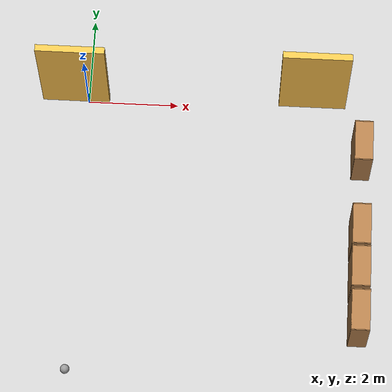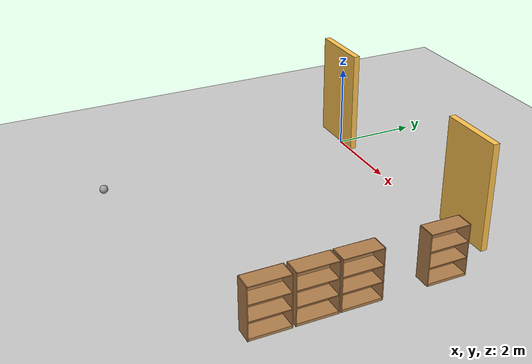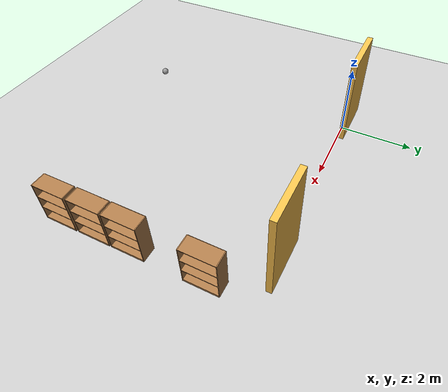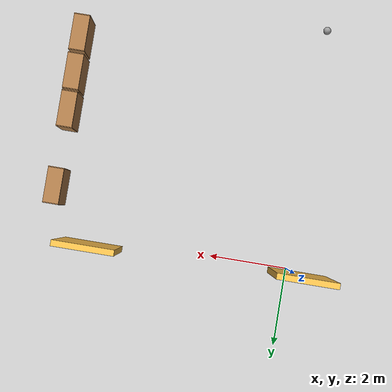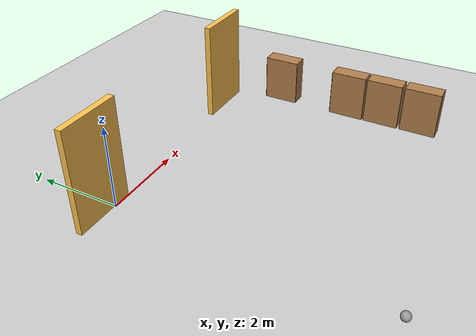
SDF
<sdf version="1.6">
 <world name="default">
  <model name="ground_plane">
   <static>1</static>
   <link name="link">
    <collision name="collision">
     <geometry><plane><normal>0 0 1</normal><size>100 100</size></plane></geometry>
     <surface>
      <contact><collide_bitmask>65535</collide_bitmask></contact>
      <friction><ode><mu>100</mu><mu2>50</mu2></ode></friction>
     </surface>
    </collision>
    <visual name="visual">
     <cast_shadows>0</cast_shadows>
     <geometry><plane><normal>0 0 1</normal><size>100 100</size></plane></geometry>
     <material>
      <script><uri>file://media/materials/scripts/gazebo.material</uri><name>Gazebo/Grey</name></script>
     </material>
    </visual>
   </link>
  </model>
  <model name="model-03">
   <pose>2.36951 0.15153 0 0 -0 0</pose>
   <link name="Wall_83">
    <collision name="Wall_83_Collision">
     <geometry><box><size>1.5 0.15 2.5</size></box></geometry>
     <pose>0 0 1.25 0 -0 0</pose>
    </collision>
    <visual name="Wall_83_Visual">
     <pose>0 0 1.25 0 -0 0</pose>
     <geometry><box><size>1.5 0.15 2.5</size></box></geometry>
     <material>
      <script><uri>file://media/materials/scripts/gazebo.material</uri><name>Gazebo/Grey</name></script>
      <ambient>1 0.764706 0.305882 1</ambient>
     </material>
     <meta><layer>0</layer></meta>
    </visual>
    <pose>-2.6608 -0.049649 0 0 -0 3.14159</pose>
   </link>
   <link name="Wall_85">
    <collision name="Wall_85_Collision">
     <geometry><box><size>1.5 0.15 2.5</size></box></geometry>
     <pose>0 0 1.25 0 -0 0</pose>
    </collision>
    <visual name="Wall_85_Visual">
     <pose>0 0 1.25 0 -0 0</pose>
     <geometry><box><size>1.5 0.15 2.5</size></box></geometry>
     <material>
      <script><uri>file://media/materials/scripts/gazebo.material</uri><name>Gazebo/Grey</name></script>
      <ambient>1 0.764706 0.305882 1</ambient>
     </material>
     <meta><layer>0</layer></meta>
    </visual>
    <pose>2.6608 0.049649 0 0 -0 0</pose>
   </link>
   <static>1</static>
  </model>
  <model name="bookshelf_clone">
   <static>1</static>
   <link name="link">
    <inertial><mass>1</mass></inertial>
    <collision name="back">
     <pose>0 0.005 0.6 0 -0 0</pose>
     <geometry><box><size>0.9 0.01 1.2</size></box></geometry>
    </collision>
    <visual name="visual1">
     <pose>0 0.005 0.6 0 -0 0</pose>
     <geometry><box><size>0.9 0.01 1.2</size></box></geometry>
     <material>
      <script><uri>file://media/materials/scripts/gazebo.material</uri><name>Gazebo/Wood</name></script>
     </material>
    </visual>
    <collision name="left_side">
     <pose>0.45 -0.195 0.6 0 -0 0</pose>
     <geometry><box><size>0.02 0.4 1.2</size></box></geometry>
    </collision>
    <visual name="visual2">
     <pose>0.45 -0.195 0.6 0 -0 0</pose>
     <geometry><box><size>0.02 0.4 1.2</size></box></geometry>
     <material>
      <script><uri>file://media/materials/scripts/gazebo.material</uri><name>Gazebo/Wood</name></script>
     </material>
    </visual>
    <collision name="right_side">
     <pose>-0.45 -0.195 0.6 0 -0 0</pose>
     <geometry><box><size>0.02 0.4 1.2</size></box></geometry>
    </collision>
    <visual name="visual3">
     <pose>-0.45 -0.195 0.6 0 -0 0</pose>
     <geometry><box><size>0.02 0.4 1.2</size></box></geometry>
     <material>
      <script><uri>file://media/materials/scripts/gazebo.material</uri><name>Gazebo/Wood</name></script>
     </material>
    </visual>
    <collision name="bottom">
     <pose>0 -0.195 0.03 0 -0 0</pose>
     <geometry><box><size>0.88 0.4 0.06</size></box></geometry>
    </collision>
    <visual name="visual4">
     <pose>0 -0.195 0.03 0 -0 0</pose>
     <geometry><box><size>0.88 0.4 0.06</size></box></geometry>
     <material>
      <script><uri>file://media/materials/scripts/gazebo.material</uri><name>Gazebo/Wood</name></script>
     </material>
    </visual>
    <collision name="top">
     <pose>0 -0.195 1.19 0 -0 0</pose>
     <geometry><box><size>0.88 0.4 0.02</size></box></geometry>
    </collision>
    <visual name="visual5">
     <pose>0 -0.195 1.19 0 -0 0</pose>
     <geometry><box><size>0.88 0.4 0.02</size></box></geometry>
     <material>
      <script><uri>file://media/materials/scripts/gazebo.material</uri><name>Gazebo/Wood</name></script>
     </material>
    </visual>
    <collision name="low_shelf">
     <pose>0 -0.195 0.43 0 -0 0</pose>
     <geometry><box><size>0.88 0.4 0.02</size></box></geometry>
    </collision>
    <visual name="visual6">
     <pose>0 -0.195 0.43 0 -0 0</pose>
     <geometry><box><size>0.88 0.4 0.02</size></box></geometry>
     <material>
      <script><uri>file://media/materials/scripts/gazebo.material</uri><name>Gazebo/Wood</name></script>
     </material>
    </visual>
    <collision name="high_shelf">
     <pose>0 -0.195 0.8 0 -0 0</pose>
     <geometry><box><size>0.88 0.4 0.02</size></box></geometry>
    </collision>
    <visual name="visual7">
     <pose>0 -0.195 0.8 0 -0 0</pose>
     <geometry><box><size>0.88 0.4 0.02</size></box></geometry>
     <material>
      <script><uri>file://media/materials/scripts/gazebo.material</uri><name>Gazebo/Wood</name></script>
     </material>
    </visual>
   </link>
   <pose>5.95095 -5.00341 0 0 -0 1.5708</pose>
  </model>
  <model name="bookshelf_clone_0">
   <static>1</static>
   <link name="link">
    <inertial><mass>1</mass></inertial>
    <collision name="back">
     <pose>0 0.005 0.6 0 -0 0</pose>
     <geometry><box><size>0.9 0.01 1.2</size></box></geometry>
    </collision>
    <visual name="visual1">
     <pose>0 0.005 0.6 0 -0 0</pose>
     <geometry><box><size>0.9 0.01 1.2</size></box></geometry>
     <material>
      <script><uri>file://media/materials/scripts/gazebo.material</uri><name>Gazebo/Wood</name></script>
     </material>
    </visual>
    <collision name="left_side">
     <pose>0.45 -0.195 0.6 0 -0 0</pose>
     <geometry><box><size>0.02 0.4 1.2</size></box></geometry>
    </collision>
    <visual name="visual2">
     <pose>0.45 -0.195 0.6 0 -0 0</pose>
     <geometry><box><size>0.02 0.4 1.2</size></box></geometry>
     <material>
      <script><uri>file://media/materials/scripts/gazebo.material</uri><name>Gazebo/Wood</name></script>
     </material>
    </visual>
    <collision name="right_side">
     <pose>-0.45 -0.195 0.6 0 -0 0</pose>
     <geometry><box><size>0.02 0.4 1.2</size></box></geometry>
    </collision>
    <visual name="visual3">
     <pose>-0.45 -0.195 0.6 0 -0 0</pose>
     <geometry><box><size>0.02 0.4 1.2</size></box></geometry>
     <material>
      <script><uri>file://media/materials/scripts/gazebo.material</uri><name>Gazebo/Wood</name></script>
     </material>
    </visual>
    <collision name="bottom">
     <pose>0 -0.195 0.03 0 -0 0</pose>
     <geometry><box><size>0.88 0.4 0.06</size></box></geometry>
    </collision>
    <visual name="visual4">
     <pose>0 -0.195 0.03 0 -0 0</pose>
     <geometry><box><size>0.88 0.4 0.06</size></box></geometry>
     <material>
      <script><uri>file://media/materials/scripts/gazebo.material</uri><name>Gazebo/Wood</name></script>
     </material>
    </visual>
    <collision name="top">
     <pose>0 -0.195 1.19 0 -0 0</pose>
     <geometry><box><size>0.88 0.4 0.02</size></box></geometry>
    </collision>
    <visual name="visual5">
     <pose>0 -0.195 1.19 0 -0 0</pose>
     <geometry><box><size>0.88 0.4 0.02</size></box></geometry>
     <material>
      <script><uri>file://media/materials/scripts/gazebo.material</uri><name>Gazebo/Wood</name></script>
     </material>
    </visual>
    <collision name="low_shelf">
     <pose>0 -0.195 0.43 0 -0 0</pose>
     <geometry><box><size>0.88 0.4 0.02</size></box></geometry>
    </collision>
    <visual name="visual6">
     <pose>0 -0.195 0.43 0 -0 0</pose>
     <geometry><box><size>0.88 0.4 0.02</size></box></geometry>
     <material>
      <script><uri>file://media/materials/scripts/gazebo.material</uri><name>Gazebo/Wood</name></script>
     </material>
    </visual>
    <collision name="high_shelf">
     <pose>0 -0.195 0.8 0 -0 0</pose>
     <geometry><box><size>0.88 0.4 0.02</size></box></geometry>
    </collision>
    <visual name="visual7">
     <pose>0 -0.195 0.8 0 -0 0</pose>
     <geometry><box><size>0.88 0.4 0.02</size></box></geometry>
     <material>
      <script><uri>file://media/materials/scripts/gazebo.material</uri><name>Gazebo/Wood</name></script>
     </material>
    </visual>
   </link>
   <pose>5.94427 -4.02578 0 0 -0 1.5708</pose>
  </model>
  <model name="bookshelf_clone_1">
   <static>1</static>
   <link name="link">
    <inertial><mass>1</mass></inertial>
    <collision name="back">
     <pose>0 0.005 0.6 0 -0 0</pose>
     <geometry><box><size>0.9 0.01 1.2</size></box></geometry>
    </collision>
    <visual name="visual1">
     <pose>0 0.005 0.6 0 -0 0</pose>
     <geometry><box><size>0.9 0.01 1.2</size></box></geometry>
     <material>
      <script><uri>file://media/materials/scripts/gazebo.material</uri><name>Gazebo/Wood</name></script>
     </material>
    </visual>
    <collision name="left_side">
     <pose>0.45 -0.195 0.6 0 -0 0</pose>
     <geometry><box><size>0.02 0.4 1.2</size></box></geometry>
    </collision>
    <visual name="visual2">
     <pose>0.45 -0.195 0.6 0 -0 0</pose>
     <geometry><box><size>0.02 0.4 1.2</size></box></geometry>
     <material>
      <script><uri>file://media/materials/scripts/gazebo.material</uri><name>Gazebo/Wood</name></script>
     </material>
    </visual>
    <collision name="right_side">
     <pose>-0.45 -0.195 0.6 0 -0 0</pose>
     <geometry><box><size>0.02 0.4 1.2</size></box></geometry>
    </collision>
    <visual name="visual3">
     <pose>-0.45 -0.195 0.6 0 -0 0</pose>
     <geometry><box><size>0.02 0.4 1.2</size></box></geometry>
     <material>
      <script><uri>file://media/materials/scripts/gazebo.material</uri><name>Gazebo/Wood</name></script>
     </material>
    </visual>
    <collision name="bottom">
     <pose>0 -0.195 0.03 0 -0 0</pose>
     <geometry><box><size>0.88 0.4 0.06</size></box></geometry>
    </collision>
    <visual name="visual4">
     <pose>0 -0.195 0.03 0 -0 0</pose>
     <geometry><box><size>0.88 0.4 0.06</size></box></geometry>
     <material>
      <script><uri>file://media/materials/scripts/gazebo.material</uri><name>Gazebo/Wood</name></script>
     </material>
    </visual>
    <collision name="top">
     <pose>0 -0.195 1.19 0 -0 0</pose>
     <geometry><box><size>0.88 0.4 0.02</size></box></geometry>
    </collision>
    <visual name="visual5">
     <pose>0 -0.195 1.19 0 -0 0</pose>
     <geometry><box><size>0.88 0.4 0.02</size></box></geometry>
     <material>
      <script><uri>file://media/materials/scripts/gazebo.material</uri><name>Gazebo/Wood</name></script>
     </material>
    </visual>
    <collision name="low_shelf">
     <pose>0 -0.195 0.43 0 -0 0</pose>
     <geometry><box><size>0.88 0.4 0.02</size></box></geometry>
    </collision>
    <visual name="visual6">
     <pose>0 -0.195 0.43 0 -0 0</pose>
     <geometry><box><size>0.88 0.4 0.02</size></box></geometry>
     <material>
      <script><uri>file://media/materials/scripts/gazebo.material</uri><name>Gazebo/Wood</name></script>
     </material>
    </visual>
    <collision name="high_shelf">
     <pose>0 -0.195 0.8 0 -0 0</pose>
     <geometry><box><size>0.88 0.4 0.02</size></box></geometry>
    </collision>
    <visual name="visual7">
     <pose>0 -0.195 0.8 0 -0 0</pose>
     <geometry><box><size>0.88 0.4 0.02</size></box></geometry>
     <material>
      <script><uri>file://media/materials/scripts/gazebo.material</uri><name>Gazebo/Wood</name></script>
     </material>
    </visual>
   </link>
   <pose>5.93869 -3.06933 0 0 -0 1.5708</pose>
  </model>
  <model name="bookshelf_clone_3">
   <static>1</static>
   <link name="link">
    <inertial><mass>1</mass></inertial>
    <collision name="back">
     <pose>0 0.005 0.6 0 -0 0</pose>
     <geometry><box><size>0.9 0.01 1.2</size></box></geometry>
    </collision>
    <visual name="visual1">
     <pose>0 0.005 0.6 0 -0 0</pose>
     <geometry><box><size>0.9 0.01 1.2</size></box></geometry>
     <material>
      <script><uri>file://media/materials/scripts/gazebo.material</uri><name>Gazebo/Wood</name></script>
     </material>
    </visual>
    <collision name="left_side">
     <pose>0.45 -0.195 0.6 0 -0 0</pose>
     <geometry><box><size>0.02 0.4 1.2</size></box></geometry>
    </collision>
    <visual name="visual2">
     <pose>0.45 -0.195 0.6 0 -0 0</pose>
     <geometry><box><size>0.02 0.4 1.2</size></box></geometry>
     <material>
      <script><uri>file://media/materials/scripts/gazebo.material</uri><name>Gazebo/Wood</name></script>
     </material>
    </visual>
    <collision name="right_side">
     <pose>-0.45 -0.195 0.6 0 -0 0</pose>
     <geometry><box><size>0.02 0.4 1.2</size></box></geometry>
    </collision>
    <visual name="visual3">
     <pose>-0.45 -0.195 0.6 0 -0 0</pose>
     <geometry><box><size>0.02 0.4 1.2</size></box></geometry>
     <material>
      <script><uri>file://media/materials/scripts/gazebo.material</uri><name>Gazebo/Wood</name></script>
     </material>
    </visual>
    <collision name="bottom">
     <pose>0 -0.195 0.03 0 -0 0</pose>
     <geometry><box><size>0.88 0.4 0.06</size></box></geometry>
    </collision>
    <visual name="visual4">
     <pose>0 -0.195 0.03 0 -0 0</pose>
     <geometry><box><size>0.88 0.4 0.06</size></box></geometry>
     <material>
      <script><uri>file://media/materials/scripts/gazebo.material</uri><name>Gazebo/Wood</name></script>
     </material>
    </visual>
    <collision name="top">
     <pose>0 -0.195 1.19 0 -0 0</pose>
     <geometry><box><size>0.88 0.4 0.02</size></box></geometry>
    </collision>
    <visual name="visual5">
     <pose>0 -0.195 1.19 0 -0 0</pose>
     <geometry><box><size>0.88 0.4 0.02</size></box></geometry>
     <material>
      <script><uri>file://media/materials/scripts/gazebo.material</uri><name>Gazebo/Wood</name></script>
     </material>
    </visual>
    <collision name="low_shelf">
     <pose>0 -0.195 0.43 0 -0 0</pose>
     <geometry><box><size>0.88 0.4 0.02</size></box></geometry>
    </collision>
    <visual name="visual6">
     <pose>0 -0.195 0.43 0 -0 0</pose>
     <geometry><box><size>0.88 0.4 0.02</size></box></geometry>
     <material>
      <script><uri>file://media/materials/scripts/gazebo.material</uri><name>Gazebo/Wood</name></script>
     </material>
    </visual>
    <collision name="high_shelf">
     <pose>0 -0.195 0.8 0 -0 0</pose>
     <geometry><box><size>0.88 0.4 0.02</size></box></geometry>
    </collision>
    <visual name="visual7">
     <pose>0 -0.195 0.8 0 -0 0</pose>
     <geometry><box><size>0.88 0.4 0.02</size></box></geometry>
     <material>
      <script><uri>file://media/materials/scripts/gazebo.material</uri><name>Gazebo/Wood</name></script>
     </material>
    </visual>
   </link>
   <pose>5.94789 -1.13735 0 0 -0 1.5708</pose>
  </model>
  <model name="my_ball">
   <link name="link_0">
    <inertial>
     <mass>1</mass>
     <inertia><ixx>0.1</ixx><ixy>0</ixy><ixz>0</ixz><iyy>0.1</iyy><iyz>0</iyz><izz>0.1</izz></inertia>
    </inertial>
    <visual name="visual">
     <geometry><sphere><radius>0.1</radius></sphere></geometry>
     <material>
      <lighting>1</lighting>
      <script><uri>file://media/materials/scripts/gazebo.material</uri><name>Gazebo/Grey</name></script>
      <shader type="pixel"><normal_map>__default__</normal_map></shader>
      <ambient>1 1 1 1</ambient>
      <diffuse>1 1 1 1</diffuse>
      <specular>1 1 1 1</specular>
      <emissive>1 1 1 1</emissive>
     </material>
    </visual>
    <collision name="collision">
     <geometry><sphere><radius>0.1</radius></sphere></geometry>
     <surface>
      <friction>
       <ode><mu>1</mu><mu2>1</mu2><fdir1>0 0 0</fdir1><slip1>0</slip1><slip2>0</slip2></ode>
       <torsional>
        <coefficient>1</coefficient>
        <patch_radius>0</patch_radius>
        <surface_radius>0</surface_radius>
        <use_patch_radius>1</use_patch_radius>
        <ode><slip>0</slip></ode>
       </torsional>
      </friction>
      <bounce><restitution_coefficient>0</restitution_coefficient><threshold>1e+06</threshold></bounce>
      <contact>
       <collide_without_contact>0</collide_without_contact>
       <collide_without_contact_bitmask>1</collide_without_contact_bitmask>
       <collide_bitmask>1</collide_bitmask>
       <ode>
        <soft_cfm>0</soft_cfm>
        <soft_erp>0.2</soft_erp>
        <kp>1e+13</kp>
        <kd>1</kd>
        <max_vel>0.01</max_vel>
        <min_depth>0</min_depth>
       </ode>
       <bullet>
        <split_impulse>1</split_impulse>
        <split_impulse_penetration_threshold>-0.01</split_impulse_penetration_threshold>
        <soft_cfm>0</soft_cfm>
        <soft_erp>0.2</soft_erp>
        <kp>1e+13</kp>
        <kd>1</kd>
       </bullet>
      </contact>
     </surface>
    </collision>
   </link>
   <static>0</static>
   <pose>-0.063313 -6.29343 0.1 0 -0 0</pose>
  </model>
 </world>
</sdf>
